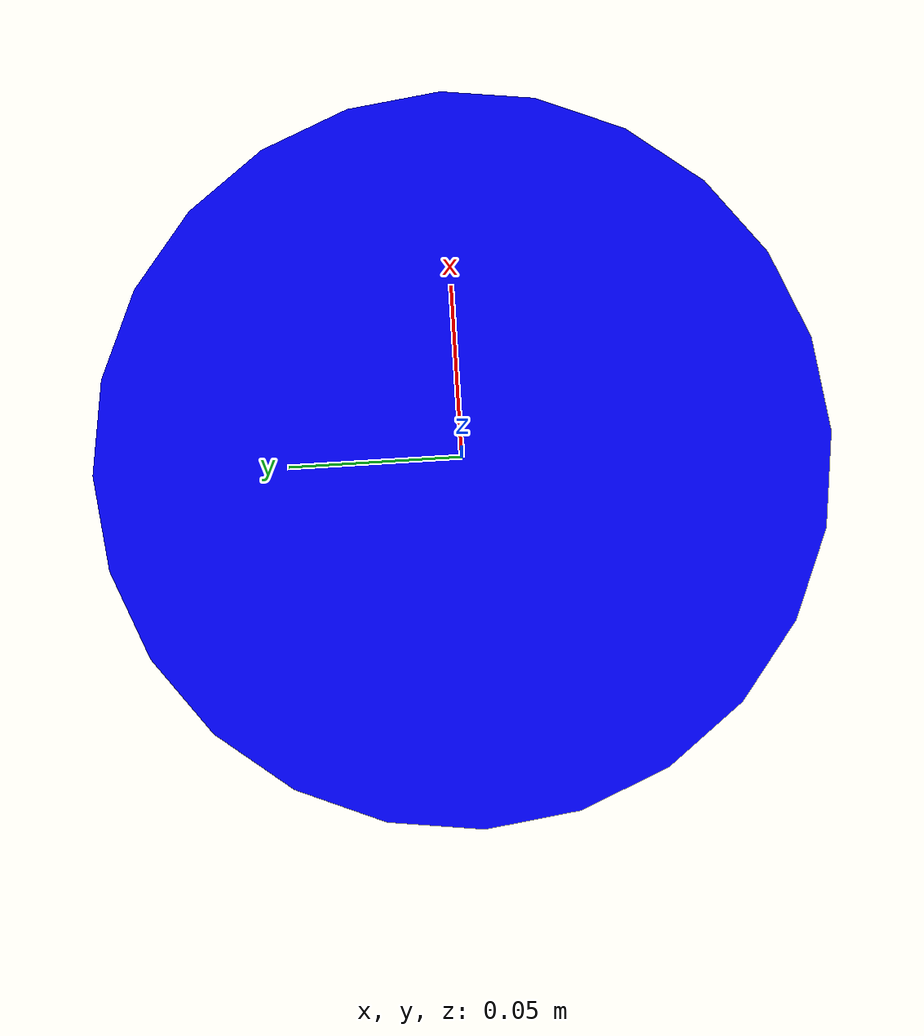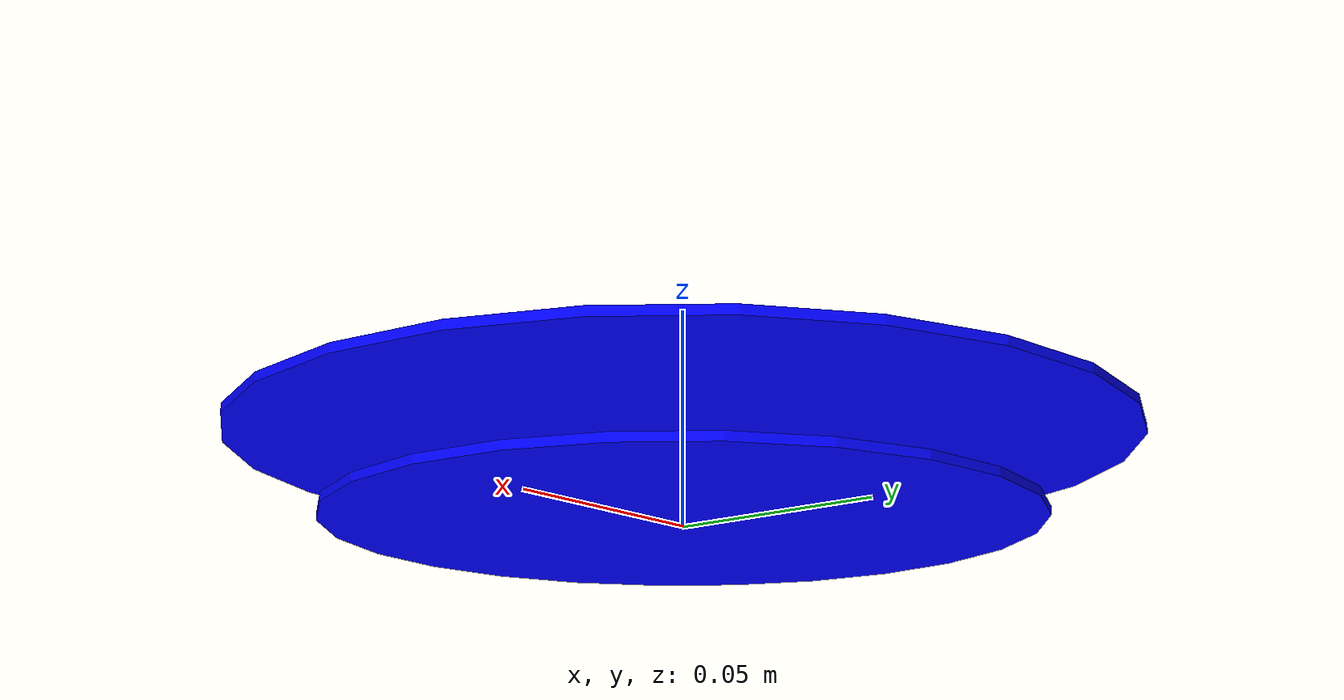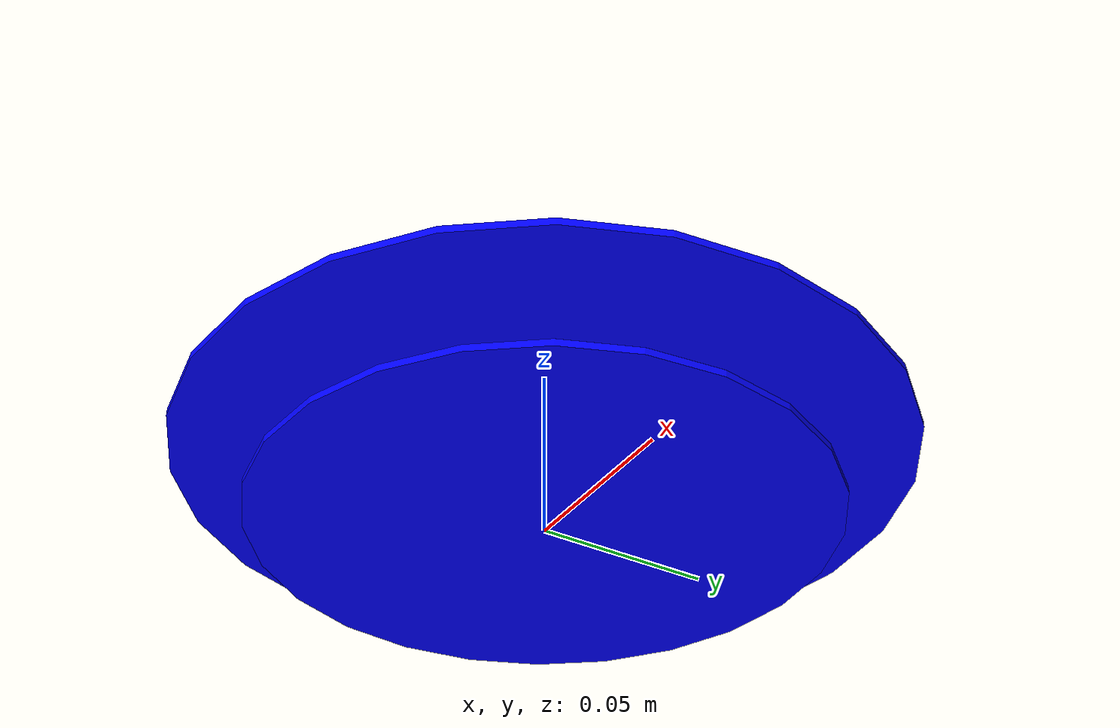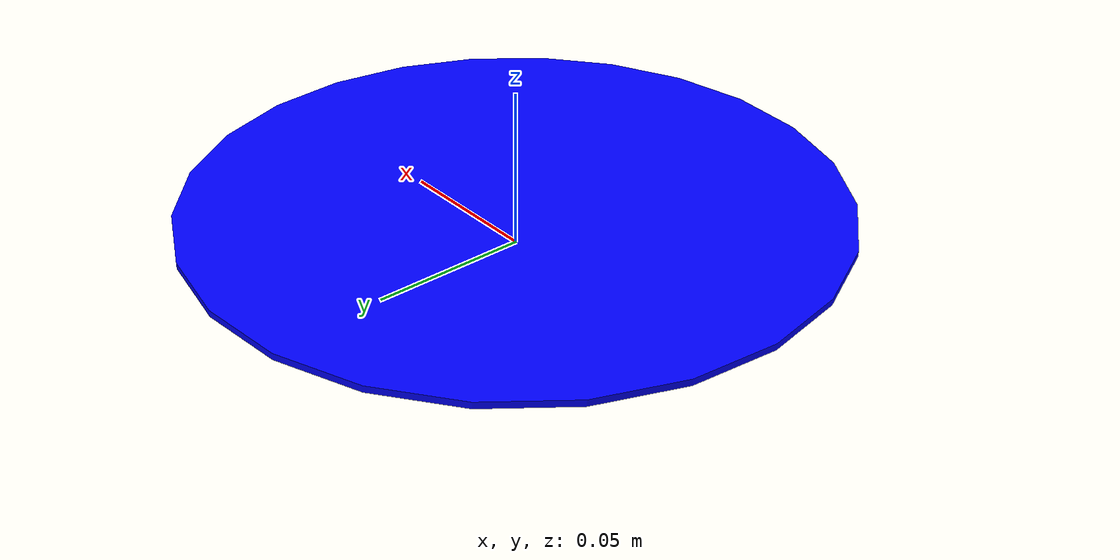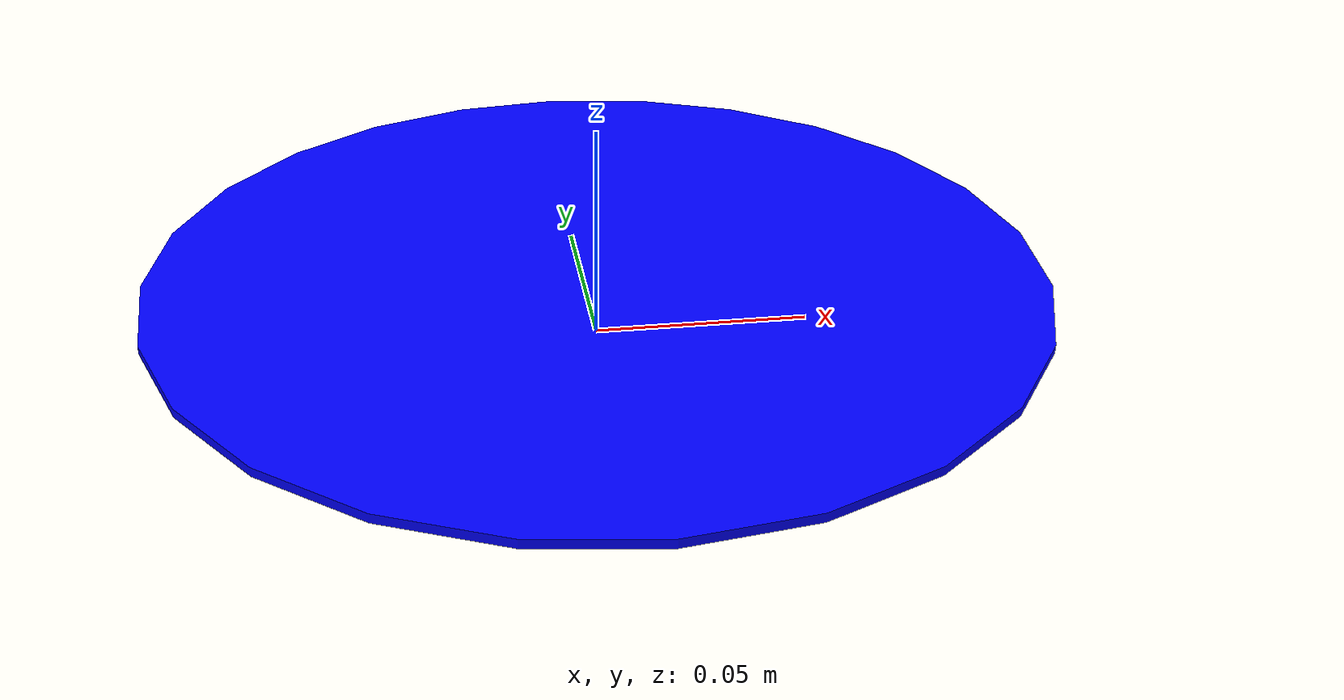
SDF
<?xml version='1.0'?>
<sdf version='1.6'>
  <model name='thin_cylinder'>
    <link name='base_link'>
      <pose>0 0 0 0 0 0</pose>
      <inertial>
        <pose>0 0 0.00915 0 0 0</pose>
        <mass>0.375</mass>
        <inertia>
          <ixx>0.000860</ixx>
          <ixy>0</ixy>
          <ixz>0</ixz>
          <iyy>0.000860</iyy>
          <iyz>0</iyz>
          <izz>0.00171</izz>
        </inertia>
      </inertial>
      <!-- Part (1).  The plate mesh has 101mm radius and 19mm height.  We
           choose a cylinder thickness of 6mm and center it at 16mm elevation,
           so that its z spans from 13mm to 19mm.
      -->
      <visual name='visual_cylinder'>
        <pose>0 0 0.018 0 0 0</pose>
        <geometry>
          <cylinder>
            <radius>0.101</radius>
            <length>0.002</length>
          </cylinder>
        </geometry>
        <material>
          <diffuse>0.0 0 1.0 1.0</diffuse>
        </material>
      </visual>
      <visual name='visual_cylinder_base'>
        <pose>0 0 0.001 0 0 0</pose>
        <geometry>
          <cylinder>
            <radius>0.080</radius>
            <length>0.002</length>
          </cylinder>
        </geometry>
        <material>
          <diffuse>0.0 0 1.0 1.0</diffuse>
        </material>
      </visual>

      <collision name='collision_cylinder'>
        <pose>0 0 0.018 0 0 0</pose>
        <geometry>
          <cylinder>
            <radius>0.101</radius>
            <length>0.002</length>
          </cylinder>
        </geometry>
        <surface>
          <friction>
            <ode>
              <mu>0.1</mu>
              <mu2>0.1</mu2>
            </ode>
          </friction>
        </surface>
      </collision>
      <collision name='collision_cylinder_base'>
        <pose>0 0 0.001 0 0 0</pose>
        <geometry>
          <cylinder>
            <radius>0.080</radius>
            <length>0.002</length>
          </cylinder>
        </geometry>
        <surface>
          <friction>
            <ode>
              <mu>0.9</mu>
              <mu2>0.5</mu2>
            </ode>
          </friction>
        </surface>
      </collision>
      <!-- Part (2).  The ring at the bottom of the plate has a 66mm radius
           on-center.  We choose a sphere radius and elevation of 5mm, so that
           each z spans from 0mm to 10mm.
      -->
      <collision name='collision_base_sphere_0'>
        <pose> 0.066  0.000 0.005 0 0 0</pose>
        <geometry>
          <sphere>
            <radius>0.005</radius>
          </sphere>
        </geometry>
      </collision>
      <collision name='collision_base_sphere_1'>
        <pose> 0.047  0.047 0.005 0 0 0</pose>
        <geometry>
          <sphere>
            <radius>0.005</radius>
          </sphere>
        </geometry>
      </collision>
      <collision name='collision_base_sphere_2'>
        <pose> 0.000  0.066 0.005 0 0 0</pose>
        <geometry>
          <sphere>
            <radius>0.005</radius>
          </sphere>
        </geometry>
      </collision>
      <collision name='collision_base_sphere_3'>
        <pose>-0.047  0.047 0.005 0 0 0</pose>
        <geometry>
          <sphere>
            <radius>0.005</radius>
          </sphere>
        </geometry>
      </collision>
      <collision name='collision_base_sphere_4'>
        <pose>-0.066  0.000 0.005 0 0 0</pose>
        <geometry>
          <sphere>
            <radius>0.005</radius>
          </sphere>
        </geometry>
      </collision>
      <collision name='collision_base_sphere_5'>
        <pose>-0.047 -0.047 0.005 0 0 0</pose>
        <geometry>
          <sphere>
            <radius>0.005</radius>
          </sphere>
        </geometry>
      </collision>
      <collision name='collision_base_sphere_6'>
        <pose> 0.000 -0.066 0.005 0 0 0</pose>
        <geometry>
          <sphere>
            <radius>0.005</radius>
          </sphere>
        </geometry>
      </collision>
      <collision name='collision_base_sphere_7'>
        <pose> 0.047 -0.047 0.005 0 0 0</pose>
        <geometry>
          <sphere>
            <radius>0.005</radius>
          </sphere>
        </geometry>
      </collision>
      <!-- Part (3).  TBD.
      -->
    </link>
  </model>
</sdf>
